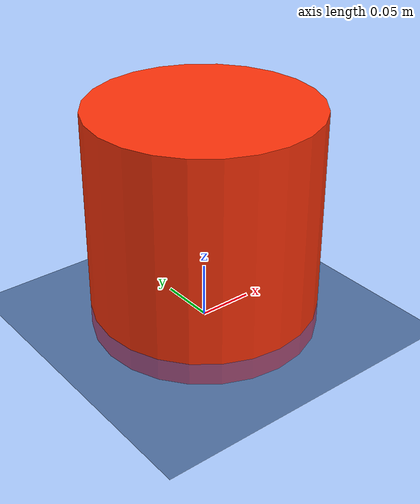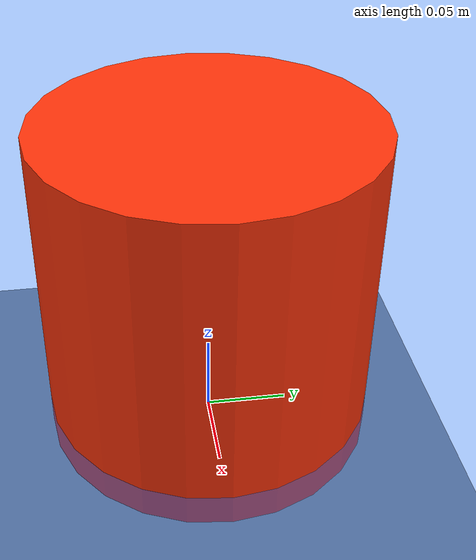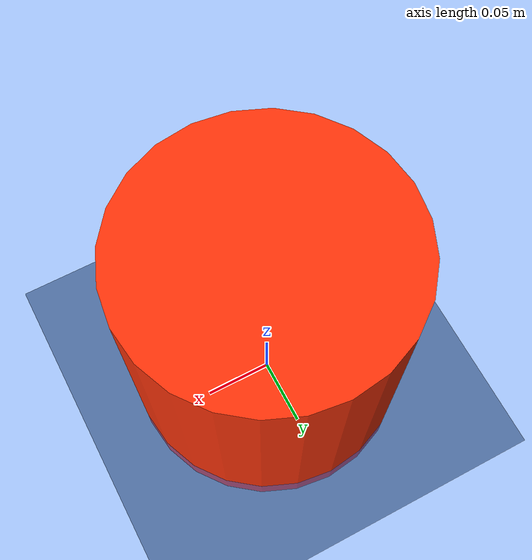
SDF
<sdf version='1.7'>
  <world name='roundflocking_controller_demo'>
    <light name='sun' type='directional'>
      <cast_shadows>1</cast_shadows>
      <pose>0 0 10 0 0 0</pose>
      <diffuse>0.82 0.82 0.82 1</diffuse>
      <specular>0.2 0.2 0.2 1</specular>
      <attenuation>
        <range>1000</range>
        <constant>0.9</constant>
        <linear>0.01</linear>
        <quadratic>0.001</quadratic>
      </attenuation>
      <direction>-0.25 0.15 -0.95</direction>
    </light>

    <model name='ground_plane'>
      <static>1</static>
      <link name='link'>
        <collision name='collision'>
          <geometry><plane><normal>0 0 1</normal><size>8 8</size></plane></geometry>
          <surface>
            <friction><ode><mu>0.9</mu><mu2>0.9</mu2></ode></friction>
          </surface>
        </collision>
        <visual name='visual'>
          <cast_shadows>0</cast_shadows>
          <geometry><plane><normal>0 0 1</normal><size>8 8</size></plane></geometry>
          <material>
            <ambient>0.48 0.48 0.46 1</ambient>
            <diffuse>0.48 0.48 0.46 1</diffuse>
          </material>
        </visual>
      </link>
    </model>

    <model name='robosar_fire_1'>
      <static>1</static>
      <pose>0 0 0.1 0 0 0</pose>
      <link name='link'>
        <collision name='collision'>
          <geometry><cylinder><radius>0.1</radius><length>0.2</length></cylinder></geometry>
        </collision>
        <visual name='visual'>
          <geometry><cylinder><radius>0.1</radius><length>0.2</length></cylinder></geometry>
          <material>
            <ambient>1.0 0.20 0.04 1</ambient>
            <diffuse>1.0 0.20 0.04 1</diffuse>
            <emissive>0.28 0.04 0.0 1</emissive>
          </material>
        </visual>
      </link>
    </model>

    <model name='target_ring'>
      <static>1</static>
      <pose>0 0 0.01 0 0 0</pose>
      <link name='link'>
        <visual name='visual'>
          <cast_shadows>0</cast_shadows>
          <geometry><cylinder><radius>1.05</radius><length>0.02</length></cylinder></geometry>
          <material>
            <ambient>0.04 0.40 1.0 0.35</ambient>
            <diffuse>0.04 0.40 1.0 0.35</diffuse>
          </material>
        </visual>
      </link>
    </model>

    <gravity>0 0 -9.8</gravity>
    <physics type='ode'>
      <max_step_size>0.001</max_step_size>
      <real_time_factor>1</real_time_factor>
      <real_time_update_rate>1000</real_time_update_rate>
    </physics>
    <scene>
      <ambient>0.46 0.46 0.46 1</ambient>
      <background>0.73 0.75 0.77 1</background>
      <shadows>1</shadows>
    </scene>
    <gui fullscreen='0'>
      <camera name='user_camera'>
        <pose>0 -5.5 7.5 0 0.95 1.57</pose>
        <view_controller>orbit</view_controller>
        <projection_type>perspective</projection_type>
      </camera>
    </gui>
  </world>
</sdf>
